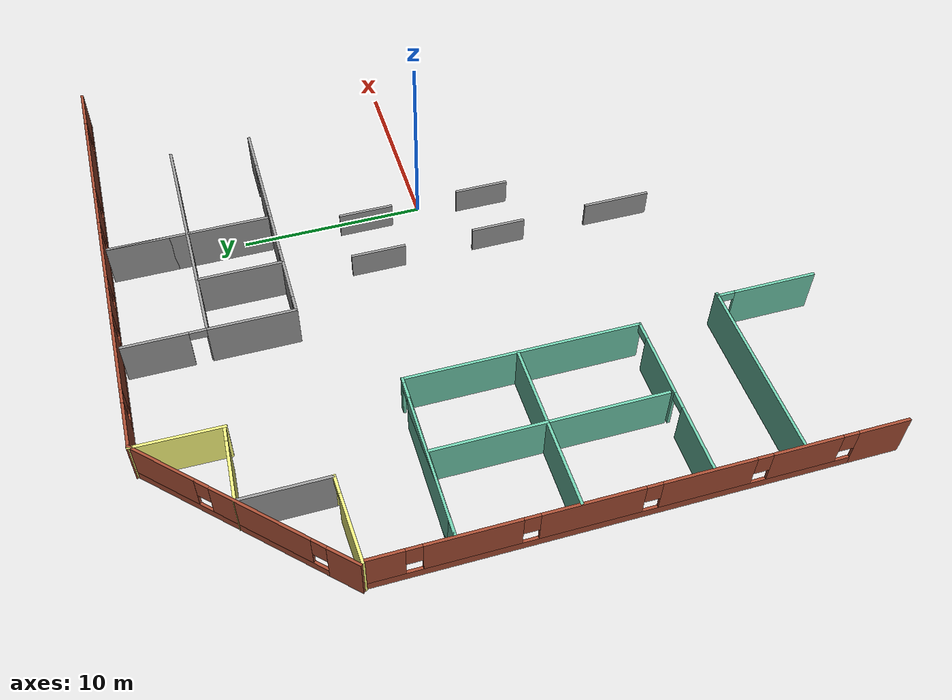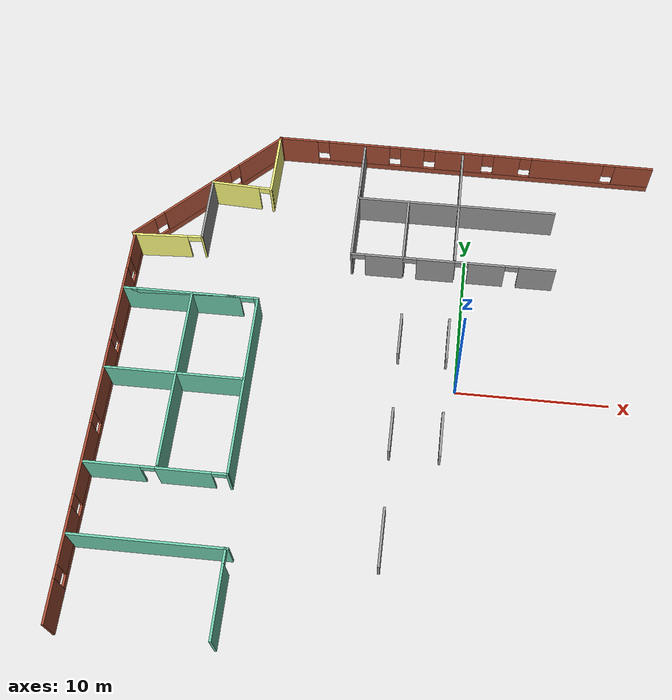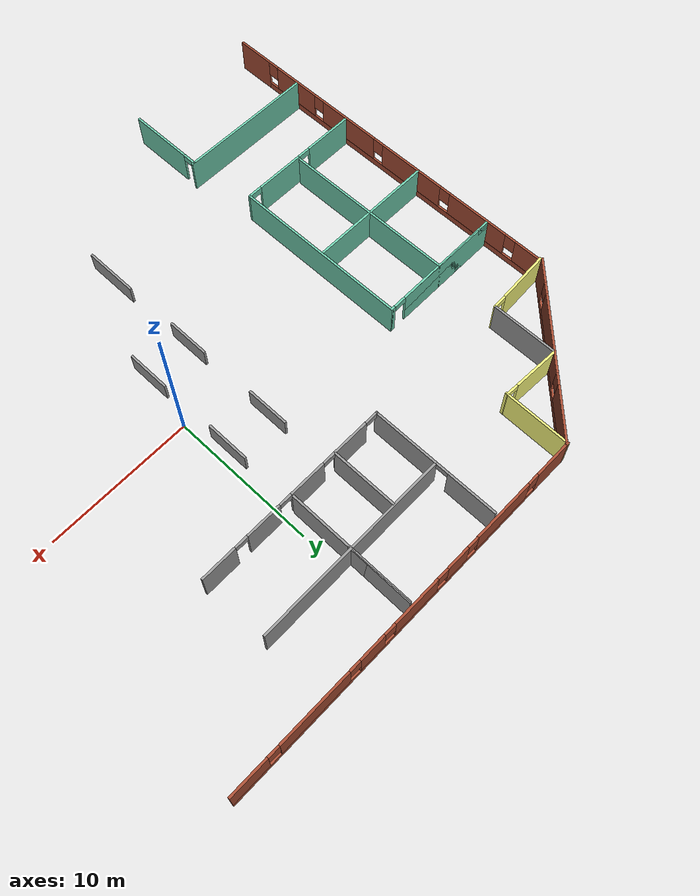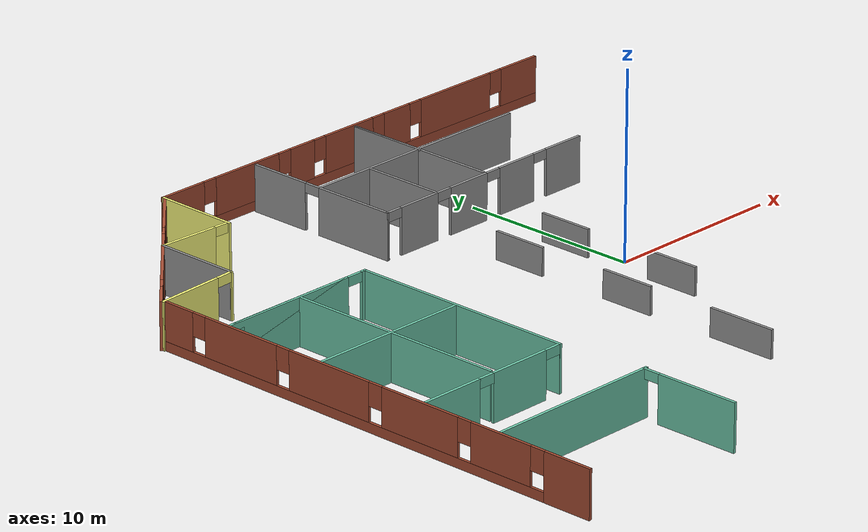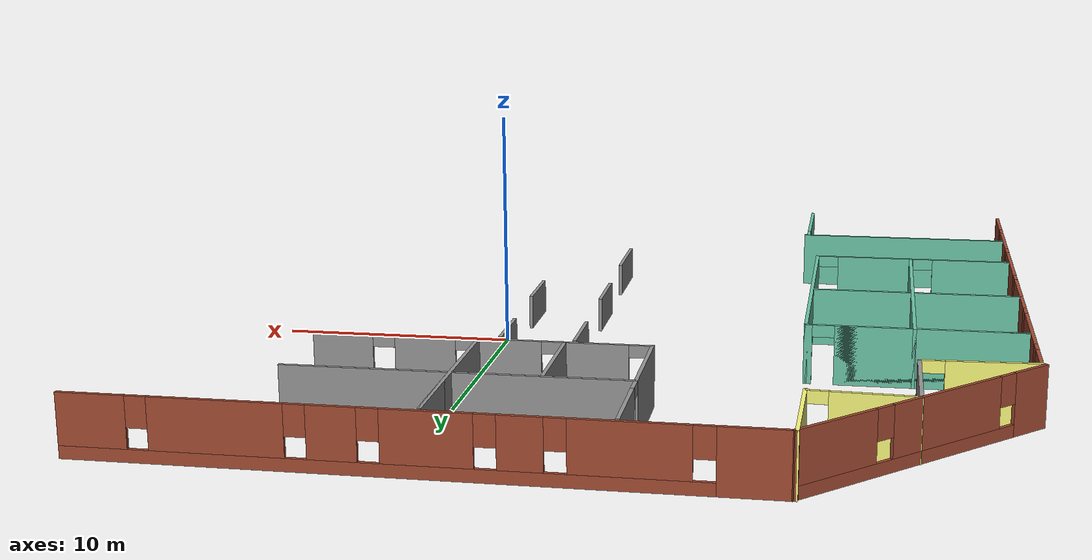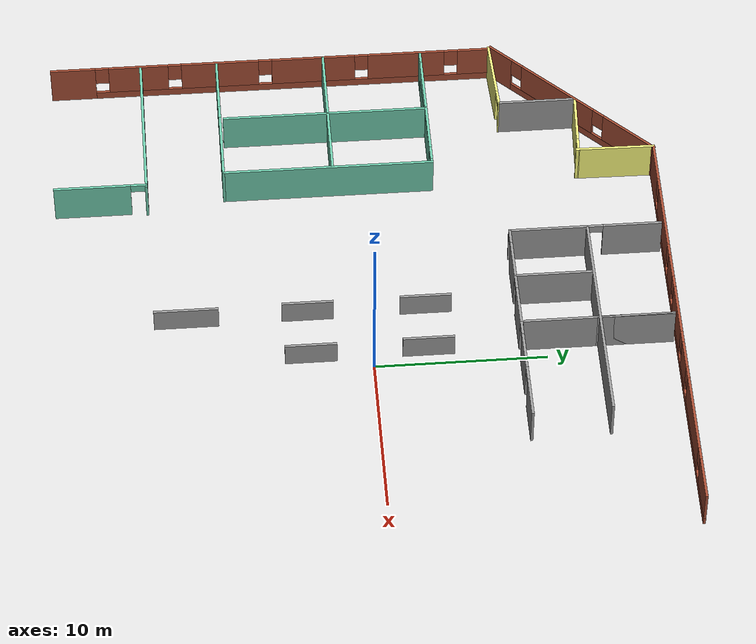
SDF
<sdf version="1.6">
 <model name="Building">
  <pose>-0.640949 -0.136495 0 0 -0 0</pose>
  <link name="Wall_0">
   <pose>-17.4265 13.2957 0 0 -0 0.785398</pose>
   <visual name="Wall_0_Visual_0">
    <pose>-5.47881 0 1.25 0 -0 0</pose>
    <geometry><box><size>1.79239 0.15 2.5</size></box></geometry>
    <material>
     <script><uri>file://media/materials/scripts/gazebo.material</uri><name>Gazebo/Bricks</name></script>
     <ambient>0.333333 0.666667 1 1</ambient>
    </material>
    <meta><layer>0</layer></meta>
   </visual>
   <collision name="Wall_0_Collision_0">
    <geometry><box><size>1.79239 0.15 2.5</size></box></geometry>
    <pose>-5.47881 0 1.25 0 -0 0</pose>
   </collision>
   <visual name="Wall_0_Visual_1">
    <pose>0.896194 0 0.25 0 -0 0</pose>
    <geometry><box><size>10.9576 0.15 0.5</size></box></geometry>
    <material>
     <script><uri>file://media/materials/scripts/gazebo.material</uri><name>Gazebo/Bricks</name></script>
     <ambient>0.333333 0.666667 1 1</ambient>
    </material>
    <meta><layer>0</layer></meta>
   </visual>
   <collision name="Wall_0_Collision_1">
    <geometry><box><size>10.9576 0.15 0.5</size></box></geometry>
    <pose>0.896194 0 0.25 0 -0 0</pose>
   </collision>
   <visual name="Wall_0_Visual_2">
    <pose>-1.03961 0 1.5 0 -0 0</pose>
    <geometry><box><size>5.48599 0.15 2</size></box></geometry>
    <material>
     <script><uri>file://media/materials/scripts/gazebo.material</uri><name>Gazebo/Bricks</name></script>
     <ambient>0.333333 0.666667 1 1</ambient>
    </material>
    <meta><layer>0</layer></meta>
   </visual>
   <collision name="Wall_0_Collision_2">
    <geometry><box><size>5.48599 0.15 2</size></box></geometry>
    <pose>-1.03961 0 1.5 0 -0 0</pose>
   </collision>
   <visual name="Wall_0_Visual_3">
    <pose>4.43919 0 1.5 0 -0 0</pose>
    <geometry><box><size>3.87162 0.15 2</size></box></geometry>
    <material>
     <script><uri>file://media/materials/scripts/gazebo.material</uri><name>Gazebo/Bricks</name></script>
     <ambient>0.333333 0.666667 1 1</ambient>
    </material>
    <meta><layer>0</layer></meta>
   </visual>
   <collision name="Wall_0_Collision_3">
    <geometry><box><size>3.87162 0.15 2</size></box></geometry>
    <pose>4.43919 0 1.5 0 -0 0</pose>
   </collision>
   <visual name="Wall_0_Visual_4">
    <pose>-4.18261 0 1.9 0 -0 0</pose>
    <geometry><box><size>0.8 0.15 1.2</size></box></geometry>
    <material>
     <script><uri>file://media/materials/scripts/gazebo.material</uri><name>Gazebo/Bricks</name></script>
     <ambient>0.333333 0.666667 1 1</ambient>
    </material>
    <meta><layer>0</layer></meta>
   </visual>
   <collision name="Wall_0_Collision_4">
    <geometry><box><size>0.8 0.15 1.2</size></box></geometry>
    <pose>-4.18261 0 1.9 0 -0 0</pose>
   </collision>
   <visual name="Wall_0_Visual_5">
    <pose>2.10338 0 1.9 0 -0 0</pose>
    <geometry><box><size>0.8 0.15 1.2</size></box></geometry>
    <material>
     <script><uri>file://media/materials/scripts/gazebo.material</uri><name>Gazebo/Bricks</name></script>
     <ambient>0.333333 0.666667 1 1</ambient>
    </material>
    <meta><layer>0</layer></meta>
   </visual>
   <collision name="Wall_0_Collision_5">
    <geometry><box><size>0.8 0.15 1.2</size></box></geometry>
    <pose>2.10338 0 1.9 0 -0 0</pose>
   </collision>
  </link>
  <link name="Wall_1">
   <pose>0.031457 17.6569 0 0 0 -0.007145</pose>
   <visual name="Wall_1_Visual_0">
    <pose>-11.7992 0 1.25 0 -0 0</pose>
    <geometry><box><size>2.74584 0.15 2.5</size></box></geometry>
    <material>
     <script><uri>file://media/materials/scripts/gazebo.material</uri><name>Gazebo/Bricks</name></script>
     <ambient>0.333333 0.666667 1 1</ambient>
    </material>
    <meta><layer>0</layer></meta>
   </visual>
   <collision name="Wall_1_Collision_0">
    <geometry><box><size>2.74584 0.15 2.5</size></box></geometry>
    <pose>-11.7992 0 1.25 0 -0 0</pose>
   </collision>
   <visual name="Wall_1_Visual_1">
    <pose>1.37292 0 0.25 0 -0 0</pose>
    <geometry><box><size>23.5984 0.15 0.5</size></box></geometry>
    <material>
     <script><uri>file://media/materials/scripts/gazebo.material</uri><name>Gazebo/Bricks</name></script>
     <ambient>0.333333 0.666667 1 1</ambient>
    </material>
    <meta><layer>0</layer></meta>
   </visual>
   <collision name="Wall_1_Collision_1">
    <geometry><box><size>23.5984 0.15 0.5</size></box></geometry>
    <pose>1.37292 0 0.25 0 -0 0</pose>
   </collision>
   <visual name="Wall_1_Visual_2">
    <pose>-7.47171 0 1.5 0 -0 0</pose>
    <geometry><box><size>4.30914 0.15 2</size></box></geometry>
    <material>
     <script><uri>file://media/materials/scripts/gazebo.material</uri><name>Gazebo/Bricks</name></script>
     <ambient>0.333333 0.666667 1 1</ambient>
    </material>
    <meta><layer>0</layer></meta>
   </visual>
   <collision name="Wall_1_Collision_2">
    <geometry><box><size>4.30914 0.15 2</size></box></geometry>
    <pose>-7.47171 0 1.5 0 -0 0</pose>
   </collision>
   <visual name="Wall_1_Visual_3">
    <pose>-3.69187 0 1.5 0 -0 0</pose>
    <geometry><box><size>1.65055 0.15 2</size></box></geometry>
    <material>
     <script><uri>file://media/materials/scripts/gazebo.material</uri><name>Gazebo/Bricks</name></script>
     <ambient>0.333333 0.666667 1 1</ambient>
    </material>
    <meta><layer>0</layer></meta>
   </visual>
   <collision name="Wall_1_Collision_3">
    <geometry><box><size>1.65055 0.15 2</size></box></geometry>
    <pose>-3.69187 0 1.5 0 -0 0</pose>
   </collision>
   <visual name="Wall_1_Visual_4">
    <pose>-0.393041 0 1.5 0 -0 0</pose>
    <geometry><box><size>3.3471 0.15 2</size></box></geometry>
    <material>
     <script><uri>file://media/materials/scripts/gazebo.material</uri><name>Gazebo/Bricks</name></script>
     <ambient>0.333333 0.666667 1 1</ambient>
    </material>
    <meta><layer>0</layer></meta>
   </visual>
   <collision name="Wall_1_Collision_4">
    <geometry><box><size>3.3471 0.15 2</size></box></geometry>
    <pose>-0.393041 0 1.5 0 -0 0</pose>
   </collision>
   <visual name="Wall_1_Visual_5">
    <pose>3.00004 0 1.5 0 -0 0</pose>
    <geometry><box><size>1.83906 0.15 2</size></box></geometry>
    <material>
     <script><uri>file://media/materials/scripts/gazebo.material</uri><name>Gazebo/Bricks</name></script>
     <ambient>0.333333 0.666667 1 1</ambient>
    </material>
    <meta><layer>0</layer></meta>
   </visual>
   <collision name="Wall_1_Collision_5">
    <geometry><box><size>1.83906 0.15 2</size></box></geometry>
    <pose>3.00004 0 1.5 0 -0 0</pose>
   </collision>
   <visual name="Wall_1_Visual_6">
    <pose>7.23663 0 1.5 0 -0 0</pose>
    <geometry><box><size>5.03413 0.15 2</size></box></geometry>
    <material>
     <script><uri>file://media/materials/scripts/gazebo.material</uri><name>Gazebo/Bricks</name></script>
     <ambient>0.333333 0.666667 1 1</ambient>
    </material>
    <meta><layer>0</layer></meta>
   </visual>
   <collision name="Wall_1_Collision_6">
    <geometry><box><size>5.03413 0.15 2</size></box></geometry>
    <pose>7.23663 0 1.5 0 -0 0</pose>
   </collision>
   <visual name="Wall_1_Visual_7">
    <pose>11.8629 0 1.5 0 -0 0</pose>
    <geometry><box><size>2.61843 0.15 2</size></box></geometry>
    <material>
     <script><uri>file://media/materials/scripts/gazebo.material</uri><name>Gazebo/Bricks</name></script>
     <ambient>0.333333 0.666667 1 1</ambient>
    </material>
    <meta><layer>0</layer></meta>
   </visual>
   <collision name="Wall_1_Collision_7">
    <geometry><box><size>2.61843 0.15 2</size></box></geometry>
    <pose>11.8629 0 1.5 0 -0 0</pose>
   </collision>
   <visual name="Wall_1_Visual_8">
    <pose>-10.0263 0 1.9 0 -0 0</pose>
    <geometry><box><size>0.8 0.15 1.2</size></box></geometry>
    <material>
     <script><uri>file://media/materials/scripts/gazebo.material</uri><name>Gazebo/Bricks</name></script>
     <ambient>0.333333 0.666667 1 1</ambient>
    </material>
    <meta><layer>0</layer></meta>
   </visual>
   <collision name="Wall_1_Collision_8">
    <geometry><box><size>0.8 0.15 1.2</size></box></geometry>
    <pose>-10.0263 0 1.9 0 -0 0</pose>
   </collision>
   <visual name="Wall_1_Visual_9">
    <pose>-4.91714 0 1.9 0 -0 0</pose>
    <geometry><box><size>0.8 0.15 1.2</size></box></geometry>
    <material>
     <script><uri>file://media/materials/scripts/gazebo.material</uri><name>Gazebo/Bricks</name></script>
     <ambient>0.333333 0.666667 1 1</ambient>
    </material>
    <meta><layer>0</layer></meta>
   </visual>
   <collision name="Wall_1_Collision_9">
    <geometry><box><size>0.8 0.15 1.2</size></box></geometry>
    <pose>-4.91714 0 1.9 0 -0 0</pose>
   </collision>
   <visual name="Wall_1_Visual_10">
    <pose>-2.46659 0 1.9 0 -0 0</pose>
    <geometry><box><size>0.8 0.15 1.2</size></box></geometry>
    <material>
     <script><uri>file://media/materials/scripts/gazebo.material</uri><name>Gazebo/Bricks</name></script>
     <ambient>0.333333 0.666667 1 1</ambient>
    </material>
    <meta><layer>0</layer></meta>
   </visual>
   <collision name="Wall_1_Collision_10">
    <geometry><box><size>0.8 0.15 1.2</size></box></geometry>
    <pose>-2.46659 0 1.9 0 -0 0</pose>
   </collision>
   <visual name="Wall_1_Visual_11">
    <pose>1.68051 0 1.9 0 -0 0</pose>
    <geometry><box><size>0.8 0.15 1.2</size></box></geometry>
    <material>
     <script><uri>file://media/materials/scripts/gazebo.material</uri><name>Gazebo/Bricks</name></script>
     <ambient>0.333333 0.666667 1 1</ambient>
    </material>
    <meta><layer>0</layer></meta>
   </visual>
   <collision name="Wall_1_Collision_11">
    <geometry><box><size>0.8 0.15 1.2</size></box></geometry>
    <pose>1.68051 0 1.9 0 -0 0</pose>
   </collision>
   <visual name="Wall_1_Visual_12">
    <pose>4.31956 0 1.9 0 -0 0</pose>
    <geometry><box><size>0.8 0.15 1.2</size></box></geometry>
    <material>
     <script><uri>file://media/materials/scripts/gazebo.material</uri><name>Gazebo/Bricks</name></script>
     <ambient>0.333333 0.666667 1 1</ambient>
    </material>
    <meta><layer>0</layer></meta>
   </visual>
   <collision name="Wall_1_Collision_12">
    <geometry><box><size>0.8 0.15 1.2</size></box></geometry>
    <pose>4.31956 0 1.9 0 -0 0</pose>
   </collision>
   <visual name="Wall_1_Visual_13">
    <pose>10.1537 0 1.9 0 -0 0</pose>
    <geometry><box><size>0.8 0.15 1.2</size></box></geometry>
    <material>
     <script><uri>file://media/materials/scripts/gazebo.material</uri><name>Gazebo/Bricks</name></script>
     <ambient>0.333333 0.666667 1 1</ambient>
    </material>
    <meta><layer>0</layer></meta>
   </visual>
   <collision name="Wall_1_Collision_13">
    <geometry><box><size>0.8 0.15 1.2</size></box></geometry>
    <pose>10.1537 0 1.9 0 -0 0</pose>
   </collision>
  </link>
  <link name="Wall_15">
   <pose>-12.1249 -15.1066 0 0 0 -1.5708</pose>
   <visual name="Wall_15_Visual_0">
    <pose>-2.71892 0 1.25 0 -0 0</pose>
    <geometry><box><size>0.062153 0.15 2.5</size></box></geometry>
    <material>
     <script><uri>file://media/materials/scripts/gazebo.material</uri><name>Gazebo/Grey</name></script>
     <ambient>0.435294 0.796078 0.67451 1</ambient>
    </material>
    <meta><layer>0</layer></meta>
   </visual>
   <collision name="Wall_15_Collision_0">
    <geometry><box><size>0.062153 0.15 2.5</size></box></geometry>
    <pose>-2.71892 0 1.25 0 -0 0</pose>
   </collision>
   <visual name="Wall_15_Visual_1">
    <pose>0.481076 0 1.25 0 -0 0</pose>
    <geometry><box><size>4.53785 0.15 2.5</size></box></geometry>
    <material>
     <script><uri>file://media/materials/scripts/gazebo.material</uri><name>Gazebo/Grey</name></script>
     <ambient>0.435294 0.796078 0.67451 1</ambient>
    </material>
    <meta><layer>0</layer></meta>
   </visual>
   <collision name="Wall_15_Collision_1">
    <geometry><box><size>4.53785 0.15 2.5</size></box></geometry>
    <pose>0.481076 0 1.25 0 -0 0</pose>
   </collision>
   <visual name="Wall_15_Visual_2">
    <pose>-2.23785 0 2.25 0 -0 0</pose>
    <geometry><box><size>0.9 0.15 0.5</size></box></geometry>
    <material>
     <script><uri>file://media/materials/scripts/gazebo.material</uri><name>Gazebo/Grey</name></script>
     <ambient>0.435294 0.796078 0.67451 1</ambient>
    </material>
    <meta><layer>0</layer></meta>
   </visual>
   <collision name="Wall_15_Collision_2">
    <geometry><box><size>0.9 0.15 0.5</size></box></geometry>
    <pose>-2.23785 0 2.25 0 -0 0</pose>
   </collision>
  </link>
  <link name="Wall_20">
   <collision name="Wall_20_Collision">
    <geometry><box><size>4.68741 0.15 2.5</size></box></geometry>
    <pose>0 0 1.25 0 -0 0</pose>
   </collision>
   <visual name="Wall_20_Visual">
    <pose>0 0 1.25 0 -0 0</pose>
    <geometry><box><size>4.68741 0.15 2.5</size></box></geometry>
    <material>
     <script><uri>file://media/materials/scripts/gazebo.material</uri><name>Gazebo/Grey</name></script>
     <ambient>1 1 0.498039 1</ambient>
    </material>
    <meta><layer>0</layer></meta>
   </visual>
   <pose>-13.0893 15.4819 0 0 0 -1.58136</pose>
  </link>
  <link name="Wall_21">
   <pose>-15.1633 13.3917 0 0 -0 3.08915</pose>
   <visual name="Wall_21_Visual_0">
    <pose>-2.118 0 1.25 0 -0 0</pose>
    <geometry><box><size>0.019653 0.15 2.5</size></box></geometry>
    <material>
     <script><uri>file://media/materials/scripts/gazebo.material</uri><name>Gazebo/Grey</name></script>
     <ambient>1 1 0.498039 1</ambient>
    </material>
    <meta><layer>0</layer></meta>
   </visual>
   <collision name="Wall_21_Collision_0">
    <geometry><box><size>0.019653 0.15 2.5</size></box></geometry>
    <pose>-2.118 0 1.25 0 -0 0</pose>
   </collision>
   <visual name="Wall_21_Visual_1">
    <pose>0.459827 0 1.25 0 -0 0</pose>
    <geometry><box><size>3.33599 0.15 2.5</size></box></geometry>
    <material>
     <script><uri>file://media/materials/scripts/gazebo.material</uri><name>Gazebo/Grey</name></script>
     <ambient>1 1 0.498039 1</ambient>
    </material>
    <meta><layer>0</layer></meta>
   </visual>
   <collision name="Wall_21_Collision_1">
    <geometry><box><size>3.33599 0.15 2.5</size></box></geometry>
    <pose>0.459827 0 1.25 0 -0 0</pose>
   </collision>
   <visual name="Wall_21_Visual_2">
    <pose>-1.65817 0 2.25 0 -0 0</pose>
    <geometry><box><size>0.9 0.15 0.5</size></box></geometry>
    <material>
     <script><uri>file://media/materials/scripts/gazebo.material</uri><name>Gazebo/Grey</name></script>
     <ambient>1 1 0.498039 1</ambient>
    </material>
    <meta><layer>0</layer></meta>
   </visual>
   <collision name="Wall_21_Collision_2">
    <geometry><box><size>0.9 0.15 0.5</size></box></geometry>
    <pose>-1.65817 0 2.25 0 -0 0</pose>
   </collision>
  </link>
  <link name="Wall_22">
   <collision name="Wall_22_Collision">
    <geometry><box><size>4.57076 0.15 2.5</size></box></geometry>
    <pose>0 0 1.25 0 -0 0</pose>
   </collision>
   <visual name="Wall_22_Visual">
    <pose>0 0 1.25 0 -0 0</pose>
    <geometry><box><size>4.57076 0.15 2.5</size></box></geometry>
    <material>
     <script><uri>file://media/materials/scripts/gazebo.material</uri><name>Gazebo/Grey</name></script>
     <ambient>1 1 1 1</ambient>
    </material>
    <meta><layer>0</layer></meta>
   </visual>
   <pose>-17.2133 11.2182 0 0 0 -1.5708</pose>
  </link>
  <link name="Wall_23">
   <pose>-19.5133 8.82945 0 0 0 -3.09484</pose>
   <visual name="Wall_23_Visual_0">
    <pose>-2.31222 0 1.25 0 -0 0</pose>
    <geometry><box><size>0.130592 0.15 2.5</size></box></geometry>
    <material>
     <script><uri>file://media/materials/scripts/gazebo.material</uri><name>Gazebo/Grey</name></script>
     <ambient>1 1 0.498039 1</ambient>
    </material>
    <meta><layer>0</layer></meta>
   </visual>
   <collision name="Wall_23_Collision_0">
    <geometry><box><size>0.130592 0.15 2.5</size></box></geometry>
    <pose>-2.31222 0 1.25 0 -0 0</pose>
   </collision>
   <visual name="Wall_23_Visual_1">
    <pose>0.515296 0 1.25 0 -0 0</pose>
    <geometry><box><size>3.72444 0.15 2.5</size></box></geometry>
    <material>
     <script><uri>file://media/materials/scripts/gazebo.material</uri><name>Gazebo/Grey</name></script>
     <ambient>1 1 0.498039 1</ambient>
    </material>
    <meta><layer>0</layer></meta>
   </visual>
   <collision name="Wall_23_Collision_1">
    <geometry><box><size>3.72444 0.15 2.5</size></box></geometry>
    <pose>0.515296 0 1.25 0 -0 0</pose>
   </collision>
   <visual name="Wall_23_Visual_2">
    <pose>-1.79692 0 2.25 0 -0 0</pose>
    <geometry><box><size>0.9 0.15 0.5</size></box></geometry>
    <material>
     <script><uri>file://media/materials/scripts/gazebo.material</uri><name>Gazebo/Grey</name></script>
     <ambient>1 1 0.498039 1</ambient>
    </material>
    <meta><layer>0</layer></meta>
   </visual>
   <collision name="Wall_23_Collision_2">
    <geometry><box><size>0.9 0.15 0.5</size></box></geometry>
    <pose>-1.79692 0 2.25 0 -0 0</pose>
   </collision>
  </link>
  <link name="Wall_30">
   <pose>-7.00268 13.025 0 0 0 -1.5708</pose>
   <visual name="Wall_30_Visual_0">
    <pose>-2.76919 0 1.25 0 -0 0</pose>
    <geometry><box><size>3.46163 0.15 2.5</size></box></geometry>
    <material>
     <script><uri>file://media/materials/scripts/gazebo.material</uri><name>Gazebo/Grey</name></script>
     <ambient>1 1 1 1</ambient>
    </material>
    <meta><layer>0</layer></meta>
   </visual>
   <collision name="Wall_30_Collision_0">
    <geometry><box><size>3.46163 0.15 2.5</size></box></geometry>
    <pose>-2.76919 0 1.25 0 -0 0</pose>
   </collision>
   <visual name="Wall_30_Visual_1">
    <pose>2.18081 0 1.25 0 -0 0</pose>
    <geometry><box><size>4.63837 0.15 2.5</size></box></geometry>
    <material>
     <script><uri>file://media/materials/scripts/gazebo.material</uri><name>Gazebo/Grey</name></script>
     <ambient>1 1 1 1</ambient>
    </material>
    <meta><layer>0</layer></meta>
   </visual>
   <collision name="Wall_30_Collision_1">
    <geometry><box><size>4.63837 0.15 2.5</size></box></geometry>
    <pose>2.18081 0 1.25 0 -0 0</pose>
   </collision>
   <visual name="Wall_30_Visual_2">
    <pose>-0.588375 0 2.25 0 -0 0</pose>
    <geometry><box><size>0.9 0.15 0.5</size></box></geometry>
    <material>
     <script><uri>file://media/materials/scripts/gazebo.material</uri><name>Gazebo/Grey</name></script>
     <ambient>1 1 1 1</ambient>
    </material>
    <meta><layer>0</layer></meta>
   </visual>
   <collision name="Wall_30_Collision_2">
    <geometry><box><size>0.9 0.15 0.5</size></box></geometry>
    <pose>-0.588375 0 2.25 0 -0 0</pose>
   </collision>
  </link>
  <link name="Wall_31">
   <pose>-0.202683 8.59997 0 0 -0 0</pose>
   <visual name="Wall_31_Visual_0">
    <pose>-6.82856 0 1.25 0 -0 0</pose>
    <geometry><box><size>0.092881 0.15 2.5</size></box></geometry>
    <material>
     <script><uri>file://media/materials/scripts/gazebo.material</uri><name>Gazebo/Grey</name></script>
     <ambient>1 1 1 1</ambient>
    </material>
    <meta><layer>0</layer></meta>
   </visual>
   <collision name="Wall_31_Collision_0">
    <geometry><box><size>0.092881 0.15 2.5</size></box></geometry>
    <pose>-6.82856 0 1.25 0 -0 0</pose>
   </collision>
   <visual name="Wall_31_Visual_1">
    <pose>-4.60096 0 1.25 0 -0 0</pose>
    <geometry><box><size>2.56232 0.15 2.5</size></box></geometry>
    <material>
     <script><uri>file://media/materials/scripts/gazebo.material</uri><name>Gazebo/Grey</name></script>
     <ambient>1 1 1 1</ambient>
    </material>
    <meta><layer>0</layer></meta>
   </visual>
   <collision name="Wall_31_Collision_1">
    <geometry><box><size>2.56232 0.15 2.5</size></box></geometry>
    <pose>-4.60096 0 1.25 0 -0 0</pose>
   </collision>
   <visual name="Wall_31_Visual_2">
    <pose>-1.13864 0 1.25 0 -0 0</pose>
    <geometry><box><size>2.56232 0.15 2.5</size></box></geometry>
    <material>
     <script><uri>file://media/materials/scripts/gazebo.material</uri><name>Gazebo/Grey</name></script>
     <ambient>1 1 1 1</ambient>
    </material>
    <meta><layer>0</layer></meta>
   </visual>
   <collision name="Wall_31_Collision_2">
    <geometry><box><size>2.56232 0.15 2.5</size></box></geometry>
    <pose>-1.13864 0 1.25 0 -0 0</pose>
   </collision>
   <visual name="Wall_31_Visual_3">
    <pose>2.27689 0 1.25 0 -0 0</pose>
    <geometry><box><size>2.46874 0.15 2.5</size></box></geometry>
    <material>
     <script><uri>file://media/materials/scripts/gazebo.material</uri><name>Gazebo/Grey</name></script>
     <ambient>1 1 1 1</ambient>
    </material>
    <meta><layer>0</layer></meta>
   </visual>
   <collision name="Wall_31_Collision_3">
    <geometry><box><size>2.46874 0.15 2.5</size></box></geometry>
    <pose>2.27689 0 1.25 0 -0 0</pose>
   </collision>
   <visual name="Wall_31_Visual_4">
    <pose>5.64313 0 1.25 0 -0 0</pose>
    <geometry><box><size>2.46374 0.15 2.5</size></box></geometry>
    <material>
     <script><uri>file://media/materials/scripts/gazebo.material</uri><name>Gazebo/Grey</name></script>
     <ambient>1 1 1 1</ambient>
    </material>
    <meta><layer>0</layer></meta>
   </visual>
   <collision name="Wall_31_Collision_4">
    <geometry><box><size>2.46374 0.15 2.5</size></box></geometry>
    <pose>5.64313 0 1.25 0 -0 0</pose>
   </collision>
   <visual name="Wall_31_Visual_5">
    <pose>-6.33212 0 2.25 0 -0 0</pose>
    <geometry><box><size>0.9 0.15 0.5</size></box></geometry>
    <material>
     <script><uri>file://media/materials/scripts/gazebo.material</uri><name>Gazebo/Grey</name></script>
     <ambient>1 1 1 1</ambient>
    </material>
    <meta><layer>0</layer></meta>
   </visual>
   <collision name="Wall_31_Collision_5">
    <geometry><box><size>0.9 0.15 0.5</size></box></geometry>
    <pose>-6.33212 0 2.25 0 -0 0</pose>
   </collision>
   <visual name="Wall_31_Visual_6">
    <pose>-2.8698 0 2.25 0 -0 0</pose>
    <geometry><box><size>0.9 0.15 0.5</size></box></geometry>
    <material>
     <script><uri>file://media/materials/scripts/gazebo.material</uri><name>Gazebo/Grey</name></script>
     <ambient>1 1 1 1</ambient>
    </material>
    <meta><layer>0</layer></meta>
   </visual>
   <collision name="Wall_31_Collision_6">
    <geometry><box><size>0.9 0.15 0.5</size></box></geometry>
    <pose>-2.8698 0 2.25 0 -0 0</pose>
   </collision>
   <visual name="Wall_31_Visual_7">
    <pose>0.592521 0 2.25 0 -0 0</pose>
    <geometry><box><size>0.9 0.15 0.5</size></box></geometry>
    <material>
     <script><uri>file://media/materials/scripts/gazebo.material</uri><name>Gazebo/Grey</name></script>
     <ambient>1 1 1 1</ambient>
    </material>
    <meta><layer>0</layer></meta>
   </visual>
   <collision name="Wall_31_Collision_7">
    <geometry><box><size>0.9 0.15 0.5</size></box></geometry>
    <pose>0.592521 0 2.25 0 -0 0</pose>
   </collision>
   <visual name="Wall_31_Visual_8">
    <pose>3.96126 0 2.25 0 -0 0</pose>
    <geometry><box><size>0.9 0.15 0.5</size></box></geometry>
    <material>
     <script><uri>file://media/materials/scripts/gazebo.material</uri><name>Gazebo/Grey</name></script>
     <ambient>1 1 1 1</ambient>
    </material>
    <meta><layer>0</layer></meta>
   </visual>
   <collision name="Wall_31_Collision_8">
    <geometry><box><size>0.9 0.15 0.5</size></box></geometry>
    <pose>3.96126 0 2.25 0 -0 0</pose>
   </collision>
  </link>
  <link name="Wall_34">
   <collision name="Wall_34_Collision">
    <geometry><box><size>13.5 0.15 2.5</size></box></geometry>
    <pose>0 0 1.25 0 -0 0</pose>
   </collision>
   <visual name="Wall_34_Visual">
    <pose>0 0 1.25 0 -0 0</pose>
    <geometry><box><size>13.5 0.15 2.5</size></box></geometry>
    <material>
     <script><uri>file://media/materials/scripts/gazebo.material</uri><name>Gazebo/Grey</name></script>
     <ambient>1 1 1 1</ambient>
    </material>
    <meta><layer>0</layer></meta>
   </visual>
   <pose>-0.234107 13.1455 0 0 -0 0</pose>
  </link>
  <link name="Wall_36">
   <collision name="Wall_36_Collision">
    <geometry><box><size>4.5 0.15 2.5</size></box></geometry>
    <pose>0 0 1.25 0 -0 0</pose>
   </collision>
   <visual name="Wall_36_Visual">
    <pose>0 0 1.25 0 -0 0</pose>
    <geometry><box><size>4.5 0.15 2.5</size></box></geometry>
    <material>
     <script><uri>file://media/materials/scripts/gazebo.material</uri><name>Gazebo/Grey</name></script>
     <ambient>1 1 1 1</ambient>
    </material>
    <meta><layer>0</layer></meta>
   </visual>
   <pose>-0.078044 15.2269 0 0 -0 1.5708</pose>
  </link>
  <link name="Wall_37">
   <collision name="Wall_37_Collision">
    <geometry><box><size>8.75 0.15 2.5</size></box></geometry>
    <pose>0 0 1.25 0 -0 0</pose>
   </collision>
   <visual name="Wall_37_Visual">
    <pose>0 0 1.25 0 -0 0</pose>
    <geometry><box><size>8.75 0.15 2.5</size></box></geometry>
    <material>
     <script><uri>file://media/materials/scripts/gazebo.material</uri><name>Gazebo/Grey</name></script>
     <ambient>1 1 1 1</ambient>
    </material>
    <meta><layer>0</layer></meta>
   </visual>
   <pose>-0.078044 13.1019 0 0 0 -1.5708</pose>
  </link>
  <link name="Wall_39">
   <collision name="Wall_39_Collision">
    <geometry><box><size>4.5 0.15 2.5</size></box></geometry>
    <pose>0 0 1.25 0 -0 0</pose>
   </collision>
   <visual name="Wall_39_Visual">
    <pose>0 0 1.25 0 -0 0</pose>
    <geometry><box><size>4.5 0.15 2.5</size></box></geometry>
    <material>
     <script><uri>file://media/materials/scripts/gazebo.material</uri><name>Gazebo/Grey</name></script>
     <ambient>1 1 1 1</ambient>
    </material>
    <meta><layer>0</layer></meta>
   </visual>
   <pose>-3.54036 10.8769 0 0 0 -1.5708</pose>
  </link>
  <link name="Wall_43">
   <pose>-17.1756 4.53645 0 0 -0 0</pose>
   <visual name="Wall_43_Visual_0">
    <pose>-0.616935 0 1.25 0 -0 0</pose>
    <geometry><box><size>7.76613 0.15 2.5</size></box></geometry>
    <material>
     <script><uri>file://media/materials/scripts/gazebo.material</uri><name>Gazebo/Grey</name></script>
     <ambient>0.435294 0.796078 0.67451 1</ambient>
    </material>
    <meta><layer>0</layer></meta>
   </visual>
   <collision name="Wall_43_Collision_0">
    <geometry><box><size>7.76613 0.15 2.5</size></box></geometry>
    <pose>-0.616935 0 1.25 0 -0 0</pose>
   </collision>
   <visual name="Wall_43_Visual_1">
    <pose>-0.167283 0 1.25 0 -0 0</pose>
    <geometry><box><size>6.86683 0.15 2.5</size></box></geometry>
    <material>
     <script><uri>file://media/materials/scripts/gazebo.material</uri><name>Gazebo/Grey</name></script>
     <ambient>0.435294 0.796078 0.67451 1</ambient>
    </material>
    <meta><layer>0</layer></meta>
   </visual>
   <collision name="Wall_43_Collision_1">
    <geometry><box><size>6.86683 0.15 2.5</size></box></geometry>
    <pose>-0.167283 0 1.25 0 -0 0</pose>
   </collision>
   <visual name="Wall_43_Visual_2">
    <pose>4.33307 0 1.25 0 -0 0</pose>
    <geometry><box><size>0.33387 0.15 2.5</size></box></geometry>
    <material>
     <script><uri>file://media/materials/scripts/gazebo.material</uri><name>Gazebo/Grey</name></script>
     <ambient>0.435294 0.796078 0.67451 1</ambient>
    </material>
    <meta><layer>0</layer></meta>
   </visual>
   <collision name="Wall_43_Collision_2">
    <geometry><box><size>0.33387 0.15 2.5</size></box></geometry>
    <pose>4.33307 0 1.25 0 -0 0</pose>
   </collision>
   <visual name="Wall_43_Visual_3">
    <pose>-4.05035 0 2.25 0 -0 0</pose>
    <geometry><box><size>0.899305 0.15 0.5</size></box></geometry>
    <material>
     <script><uri>file://media/materials/scripts/gazebo.material</uri><name>Gazebo/Grey</name></script>
     <ambient>0.435294 0.796078 0.67451 1</ambient>
    </material>
    <meta><layer>0</layer></meta>
   </visual>
   <collision name="Wall_43_Collision_3">
    <geometry><box><size>0.899305 0.15 0.5</size></box></geometry>
    <pose>-4.05035 0 2.25 0 -0 0</pose>
   </collision>
   <visual name="Wall_43_Visual_4">
    <pose>3.71613 0 2.25 0 -0 0</pose>
    <geometry><box><size>0.9 0.15 0.5</size></box></geometry>
    <material>
     <script><uri>file://media/materials/scripts/gazebo.material</uri><name>Gazebo/Grey</name></script>
     <ambient>0.435294 0.796078 0.67451 1</ambient>
    </material>
    <meta><layer>0</layer></meta>
   </visual>
   <collision name="Wall_43_Collision_4">
    <geometry><box><size>0.9 0.15 0.5</size></box></geometry>
    <pose>3.71613 0 2.25 0 -0 0</pose>
   </collision>
   <visual name="Wall_43_Visual_5">
    <pose>3.71613 0 2.25 0 -0 0</pose>
    <geometry><box><size>0.9 0.15 0.5</size></box></geometry>
    <material>
     <script><uri>file://media/materials/scripts/gazebo.material</uri><name>Gazebo/Grey</name></script>
     <ambient>0.435294 0.796078 0.67451 1</ambient>
    </material>
    <meta><layer>0</layer></meta>
   </visual>
   <collision name="Wall_43_Collision_5">
    <geometry><box><size>0.9 0.15 0.5</size></box></geometry>
    <pose>3.71613 0 2.25 0 -0 0</pose>
   </collision>
  </link>
  <link name="Wall_44">
   <collision name="Wall_44_Collision">
    <geometry><box><size>12.5 0.15 2.5</size></box></geometry>
    <pose>0 0 1.25 0 -0 0</pose>
   </collision>
   <visual name="Wall_44_Visual">
    <pose>0 0 1.25 0 -0 0</pose>
    <geometry><box><size>12.5 0.15 2.5</size></box></geometry>
    <material>
     <script><uri>file://media/materials/scripts/gazebo.material</uri><name>Gazebo/Grey</name></script>
     <ambient>0.435294 0.796078 0.67451 1</ambient>
    </material>
    <meta><layer>0</layer></meta>
   </visual>
   <pose>-12.7506 -1.63855 0 0 0 -1.5708</pose>
  </link>
  <link name="Wall_45">
   <pose>-17.1756 -7.81355 0 0 -0 3.14159</pose>
   <visual name="Wall_45_Visual_0">
    <pose>-4.42664 0 1.25 0 -0 0</pose>
    <geometry><box><size>0.146718 0.15 2.5</size></box></geometry>
    <material>
     <script><uri>file://media/materials/scripts/gazebo.material</uri><name>Gazebo/Grey</name></script>
     <ambient>0.435294 0.796078 0.67451 1</ambient>
    </material>
    <meta><layer>0</layer></meta>
   </visual>
   <collision name="Wall_45_Collision_0">
    <geometry><box><size>0.146718 0.15 2.5</size></box></geometry>
    <pose>-4.42664 0 1.25 0 -0 0</pose>
   </collision>
   <visual name="Wall_45_Visual_1">
    <pose>-1.70424 0 1.25 0 -0 0</pose>
    <geometry><box><size>3.49808 0.15 2.5</size></box></geometry>
    <material>
     <script><uri>file://media/materials/scripts/gazebo.material</uri><name>Gazebo/Grey</name></script>
     <ambient>0.435294 0.796078 0.67451 1</ambient>
    </material>
    <meta><layer>0</layer></meta>
   </visual>
   <collision name="Wall_45_Collision_1">
    <geometry><box><size>3.49808 0.15 2.5</size></box></geometry>
    <pose>-1.70424 0 1.25 0 -0 0</pose>
   </collision>
   <visual name="Wall_45_Visual_2">
    <pose>2.7224 0 1.25 0 -0 0</pose>
    <geometry><box><size>3.5552 0.15 2.5</size></box></geometry>
    <material>
     <script><uri>file://media/materials/scripts/gazebo.material</uri><name>Gazebo/Grey</name></script>
     <ambient>0.435294 0.796078 0.67451 1</ambient>
    </material>
    <meta><layer>0</layer></meta>
   </visual>
   <collision name="Wall_45_Collision_2">
    <geometry><box><size>3.5552 0.15 2.5</size></box></geometry>
    <pose>2.7224 0 1.25 0 -0 0</pose>
   </collision>
   <visual name="Wall_45_Visual_3">
    <pose>-3.90328 0 2.25 0 -0 0</pose>
    <geometry><box><size>0.9 0.15 0.5</size></box></geometry>
    <material>
     <script><uri>file://media/materials/scripts/gazebo.material</uri><name>Gazebo/Grey</name></script>
     <ambient>0.435294 0.796078 0.67451 1</ambient>
    </material>
    <meta><layer>0</layer></meta>
   </visual>
   <collision name="Wall_45_Collision_3">
    <geometry><box><size>0.9 0.15 0.5</size></box></geometry>
    <pose>-3.90328 0 2.25 0 -0 0</pose>
   </collision>
   <visual name="Wall_45_Visual_4">
    <pose>0.494799 0 2.25 0 -0 0</pose>
    <geometry><box><size>0.9 0.15 0.5</size></box></geometry>
    <material>
     <script><uri>file://media/materials/scripts/gazebo.material</uri><name>Gazebo/Grey</name></script>
     <ambient>0.435294 0.796078 0.67451 1</ambient>
    </material>
    <meta><layer>0</layer></meta>
   </visual>
   <collision name="Wall_45_Collision_4">
    <geometry><box><size>0.9 0.15 0.5</size></box></geometry>
    <pose>0.494799 0 2.25 0 -0 0</pose>
   </collision>
  </link>
  <link name="Wall_47">
   <collision name="Wall_47_Collision">
    <geometry><box><size>9 0.15 2.5</size></box></geometry>
    <pose>0 0 1.25 0 -0 0</pose>
   </collision>
   <visual name="Wall_47_Visual">
    <pose>0 0 1.25 0 -0 0</pose>
    <geometry><box><size>9 0.15 2.5</size></box></geometry>
    <material>
     <script><uri>file://media/materials/scripts/gazebo.material</uri><name>Gazebo/Grey</name></script>
     <ambient>0.435294 0.796078 0.67451 1</ambient>
    </material>
    <meta><layer>0</layer></meta>
   </visual>
   <pose>-17.2691 -1.35885 0 0 -0 0</pose>
  </link>
  <link name="Wall_49">
   <collision name="Wall_49_Collision">
    <geometry><box><size>12.25 0.15 2.5</size></box></geometry>
    <pose>0 0 1.25 0 -0 0</pose>
   </collision>
   <visual name="Wall_49_Visual">
    <pose>0 0 1.25 0 -0 0</pose>
    <geometry><box><size>12.25 0.15 2.5</size></box></geometry>
    <material>
     <script><uri>file://media/materials/scripts/gazebo.material</uri><name>Gazebo/Grey</name></script>
     <ambient>0.435294 0.796078 0.67451 1</ambient>
    </material>
    <meta><layer>0</layer></meta>
   </visual>
   <pose>-17.1089 -1.51355 0 0 0 -1.5708</pose>
  </link>
  <link name="Wall_5">
   <pose>-21.739 -4.59442 0 0 -0 1.5708</pose>
   <visual name="Wall_5_Visual_0">
    <pose>-11.8979 0 1.25 0 -0 0</pose>
    <geometry><box><size>2.70417 0.15 2.5</size></box></geometry>
    <material>
     <script><uri>file://media/materials/scripts/gazebo.material</uri><name>Gazebo/Bricks</name></script>
     <ambient>0.333333 0.666667 1 1</ambient>
    </material>
    <meta><layer>0</layer></meta>
   </visual>
   <collision name="Wall_5_Collision_0">
    <geometry><box><size>2.70417 0.15 2.5</size></box></geometry>
    <pose>-11.8979 0 1.25 0 -0 0</pose>
   </collision>
   <visual name="Wall_5_Visual_1">
    <pose>1.35209 0 0.25 0 -0 0</pose>
    <geometry><box><size>23.7958 0.15 0.5</size></box></geometry>
    <material>
     <script><uri>file://media/materials/scripts/gazebo.material</uri><name>Gazebo/Bricks</name></script>
     <ambient>0.333333 0.666667 1 1</ambient>
    </material>
    <meta><layer>0</layer></meta>
   </visual>
   <collision name="Wall_5_Collision_1">
    <geometry><box><size>23.7958 0.15 0.5</size></box></geometry>
    <pose>1.35209 0 0.25 0 -0 0</pose>
   </collision>
   <visual name="Wall_5_Visual_2">
    <pose>-7.94722 0 1.5 0 -0 0</pose>
    <geometry><box><size>3.59722 0.15 2</size></box></geometry>
    <material>
     <script><uri>file://media/materials/scripts/gazebo.material</uri><name>Gazebo/Bricks</name></script>
     <ambient>0.333333 0.666667 1 1</ambient>
    </material>
    <meta><layer>0</layer></meta>
   </visual>
   <collision name="Wall_5_Collision_2">
    <geometry><box><size>3.59722 0.15 2</size></box></geometry>
    <pose>-7.94722 0 1.5 0 -0 0</pose>
   </collision>
   <visual name="Wall_5_Visual_3">
    <pose>-3.00783 0 1.5 0 -0 0</pose>
    <geometry><box><size>4.68157 0.15 2</size></box></geometry>
    <material>
     <script><uri>file://media/materials/scripts/gazebo.material</uri><name>Gazebo/Bricks</name></script>
     <ambient>0.333333 0.666667 1 1</ambient>
    </material>
    <meta><layer>0</layer></meta>
   </visual>
   <collision name="Wall_5_Collision_3">
    <geometry><box><size>4.68157 0.15 2</size></box></geometry>
    <pose>-3.00783 0 1.5 0 -0 0</pose>
   </collision>
   <visual name="Wall_5_Visual_4">
    <pose>2.65047 0 1.5 0 -0 0</pose>
    <geometry><box><size>5.03503 0.15 2</size></box></geometry>
    <material>
     <script><uri>file://media/materials/scripts/gazebo.material</uri><name>Gazebo/Bricks</name></script>
     <ambient>0.333333 0.666667 1 1</ambient>
    </material>
    <meta><layer>0</layer></meta>
   </visual>
   <collision name="Wall_5_Collision_4">
    <geometry><box><size>5.03503 0.15 2</size></box></geometry>
    <pose>2.65047 0 1.5 0 -0 0</pose>
   </collision>
   <visual name="Wall_5_Visual_5">
    <pose>8.29086 0 1.5 0 -0 0</pose>
    <geometry><box><size>4.64575 0.15 2</size></box></geometry>
    <material>
     <script><uri>file://media/materials/scripts/gazebo.material</uri><name>Gazebo/Bricks</name></script>
     <ambient>0.333333 0.666667 1 1</ambient>
    </material>
    <meta><layer>0</layer></meta>
   </visual>
   <collision name="Wall_5_Collision_5">
    <geometry><box><size>4.64575 0.15 2</size></box></geometry>
    <pose>8.29086 0 1.5 0 -0 0</pose>
   </collision>
   <visual name="Wall_5_Visual_6">
    <pose>12.3319 0 1.5 0 -0 0</pose>
    <geometry><box><size>1.83627 0.15 2</size></box></geometry>
    <material>
     <script><uri>file://media/materials/scripts/gazebo.material</uri><name>Gazebo/Bricks</name></script>
     <ambient>0.333333 0.666667 1 1</ambient>
    </material>
    <meta><layer>0</layer></meta>
   </visual>
   <collision name="Wall_5_Collision_6">
    <geometry><box><size>1.83627 0.15 2</size></box></geometry>
    <pose>12.3319 0 1.5 0 -0 0</pose>
   </collision>
   <visual name="Wall_5_Visual_7">
    <pose>-10.1458 0 1.9 0 -0 0</pose>
    <geometry><box><size>0.8 0.15 1.2</size></box></geometry>
    <material>
     <script><uri>file://media/materials/scripts/gazebo.material</uri><name>Gazebo/Bricks</name></script>
     <ambient>0.333333 0.666667 1 1</ambient>
    </material>
    <meta><layer>0</layer></meta>
   </visual>
   <collision name="Wall_5_Collision_7">
    <geometry><box><size>0.8 0.15 1.2</size></box></geometry>
    <pose>-10.1458 0 1.9 0 -0 0</pose>
   </collision>
   <visual name="Wall_5_Visual_8">
    <pose>-5.74861 0 1.9 0 -0 0</pose>
    <geometry><box><size>0.8 0.15 1.2</size></box></geometry>
    <material>
     <script><uri>file://media/materials/scripts/gazebo.material</uri><name>Gazebo/Bricks</name></script>
     <ambient>0.333333 0.666667 1 1</ambient>
    </material>
    <meta><layer>0</layer></meta>
   </visual>
   <collision name="Wall_5_Collision_8">
    <geometry><box><size>0.8 0.15 1.2</size></box></geometry>
    <pose>-5.74861 0 1.9 0 -0 0</pose>
   </collision>
   <visual name="Wall_5_Visual_9">
    <pose>-0.267042 0 1.9 0 -0 0</pose>
    <geometry><box><size>0.8 0.15 1.2</size></box></geometry>
    <material>
     <script><uri>file://media/materials/scripts/gazebo.material</uri><name>Gazebo/Bricks</name></script>
     <ambient>0.333333 0.666667 1 1</ambient>
    </material>
    <meta><layer>0</layer></meta>
   </visual>
   <collision name="Wall_5_Collision_9">
    <geometry><box><size>0.8 0.15 1.2</size></box></geometry>
    <pose>-0.267042 0 1.9 0 -0 0</pose>
   </collision>
   <visual name="Wall_5_Visual_10">
    <pose>5.56799 0 1.9 0 -0 0</pose>
    <geometry><box><size>0.8 0.15 1.2</size></box></geometry>
    <material>
     <script><uri>file://media/materials/scripts/gazebo.material</uri><name>Gazebo/Bricks</name></script>
     <ambient>0.333333 0.666667 1 1</ambient>
    </material>
    <meta><layer>0</layer></meta>
   </visual>
   <collision name="Wall_5_Collision_10">
    <geometry><box><size>0.8 0.15 1.2</size></box></geometry>
    <pose>5.56799 0 1.9 0 -0 0</pose>
   </collision>
   <visual name="Wall_5_Visual_11">
    <pose>11.0137 0 1.9 0 -0 0</pose>
    <geometry><box><size>0.8 0.15 1.2</size></box></geometry>
    <material>
     <script><uri>file://media/materials/scripts/gazebo.material</uri><name>Gazebo/Bricks</name></script>
     <ambient>0.333333 0.666667 1 1</ambient>
    </material>
    <meta><layer>0</layer></meta>
   </visual>
   <collision name="Wall_5_Collision_11">
    <geometry><box><size>0.8 0.15 1.2</size></box></geometry>
    <pose>11.0137 0 1.9 0 -0 0</pose>
   </collision>
  </link>
  <link name="Wall_67">
   <collision name="Wall_67_Collision">
    <geometry><box><size>3 0.15 1.5</size></box></geometry>
    <pose>0 0 0.75 0 -0 0</pose>
   </collision>
   <visual name="Wall_67_Visual">
    <pose>0 0 0.75 0 -0 0</pose>
    <geometry><box><size>3 0.15 1.5</size></box></geometry>
    <material>
     <script><uri>file://media/materials/scripts/gazebo.material</uri><name>Gazebo/Grey</name></script>
     <ambient>1 1 1 1</ambient>
    </material>
    <meta><layer>0</layer></meta>
   </visual>
   <pose>-3.25805 3.38449 0 0 -0 1.5708</pose>
  </link>
  <link name="Wall_69">
   <collision name="Wall_69_Collision">
    <geometry><box><size>3 0.15 1.5</size></box></geometry>
    <pose>0 0 0.75 0 -0 0</pose>
   </collision>
   <visual name="Wall_69_Visual">
    <pose>0 0 0.75 0 -0 0</pose>
    <geometry><box><size>3 0.15 1.5</size></box></geometry>
    <material>
     <script><uri>file://media/materials/scripts/gazebo.material</uri><name>Gazebo/Grey</name></script>
     <ambient>1 1 1 1</ambient>
    </material>
    <meta><layer>0</layer></meta>
   </visual>
   <pose>-0.087051 3.31849 0 0 0 -1.5708</pose>
  </link>
  <link name="Wall_77">
   <collision name="Wall_77_Collision">
    <geometry><box><size>3 0.15 1.5</size></box></geometry>
    <pose>0 0 0.75 0 -0 0</pose>
   </collision>
   <visual name="Wall_77_Visual">
    <pose>0 0 0.75 0 -0 0</pose>
    <geometry><box><size>3 0.15 1.5</size></box></geometry>
    <material>
     <script><uri>file://media/materials/scripts/gazebo.material</uri><name>Gazebo/Grey</name></script>
     <ambient>1 1 1 1</ambient>
    </material>
    <meta><layer>0</layer></meta>
   </visual>
   <pose>-3.20705 -3.45851 0 0 0 -1.5708</pose>
  </link>
  <link name="Wall_79">
   <collision name="Wall_79_Collision">
    <geometry><box><size>3 0.15 1.5</size></box></geometry>
    <pose>0 0 0.75 0 -0 0</pose>
   </collision>
   <visual name="Wall_79_Visual">
    <pose>0 0 0.75 0 -0 0</pose>
    <geometry><box><size>3 0.15 1.5</size></box></geometry>
    <material>
     <script><uri>file://media/materials/scripts/gazebo.material</uri><name>Gazebo/Grey</name></script>
     <ambient>1 1 1 1</ambient>
    </material>
    <meta><layer>0</layer></meta>
   </visual>
   <pose>-0.023051 -3.45851 0 0 0 -1.5708</pose>
  </link>
  <link name="Wall_8">
   <collision name="Wall_8_Collision">
    <geometry><box><size>9.75 0.15 2.5</size></box></geometry>
    <pose>0 0 1.25 0 -0 0</pose>
   </collision>
   <visual name="Wall_8_Visual">
    <pose>0 0 1.25 0 -0 0</pose>
    <geometry><box><size>9.75 0.15 2.5</size></box></geometry>
    <material>
     <script><uri>file://media/materials/scripts/gazebo.material</uri><name>Gazebo/Grey</name></script>
     <ambient>0.435294 0.796078 0.67451 1</ambient>
    </material>
    <meta><layer>0</layer></meta>
   </visual>
   <pose>-16.8006 -12.4008 0 0 -0 0</pose>
  </link>
  <link name="Wall_86">
   <collision name="Wall_86_Collision">
    <geometry><box><size>3.75 0.15 1.5</size></box></geometry>
    <pose>0 0 0.75 0 -0 0</pose>
   </collision>
   <visual name="Wall_86_Visual">
    <pose>0 0 0.75 0 -0 0</pose>
    <geometry><box><size>3.75 0.15 1.5</size></box></geometry>
    <material>
     <script><uri>file://media/materials/scripts/gazebo.material</uri><name>Gazebo/Grey</name></script>
     <ambient>1 1 1 1</ambient>
    </material>
    <meta><layer>0</layer></meta>
   </visual>
   <pose>-3.12105 -10.4785 0 0 0 -1.5708</pose>
  </link>
  <static>1</static>
 </model>
</sdf>
